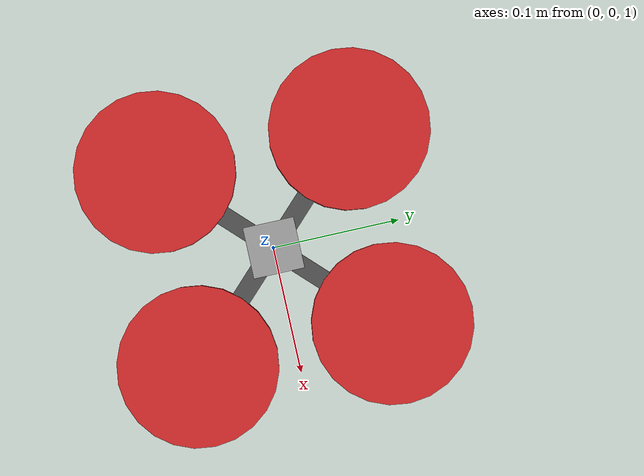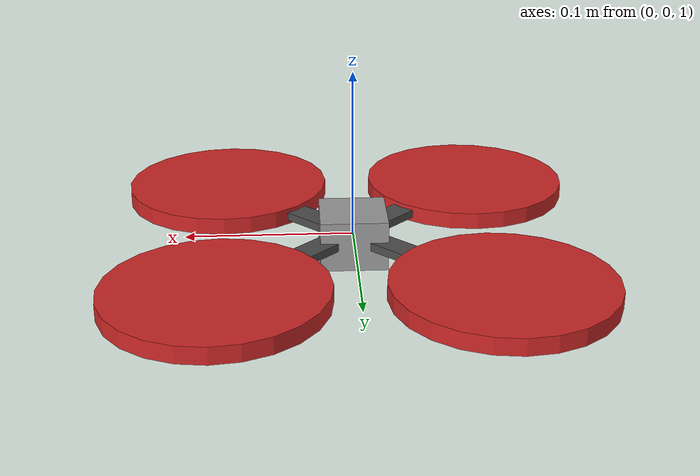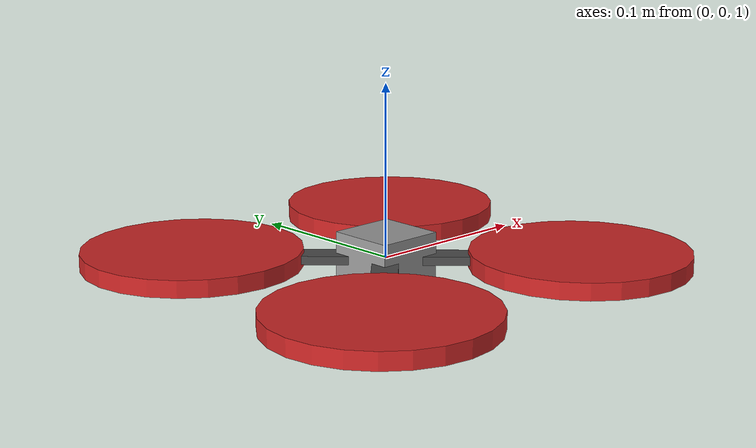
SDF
<?xml version='1.0' encoding='UTF-8'?>
<sdf version="1.7">
  <model name="x_quad_drone_generated">
    <static>false</static>
    <pose>0 0 1.0 0 0 0</pose>
    <link name="hull">
      <pose>0 0 0 0 0 0</pose>
      <inertial>
        <mass>0.272000</mass>
        <inertia>
          <ixx>5.66666667e-05</ixx>
          <iyy>5.66666667e-05</iyy>
          <izz>7.25333333e-05</izz>
          <ixy>0</ixy><ixz>0</ixz><iyz>0</iyz>
        </inertia>
      </inertial>
      <collision name="hull_geom_col">
        <geometry><box><size>0.040000 0.040000 0.030000</size></box></geometry>
      </collision>
      <visual name="hull_geom_vis">
        <geometry><box><size>0.040000 0.040000 0.030000</size></box></geometry>
        <material><script><uri>file://media/materials/scripts/gazebo.material</uri><name>Gazebo/Grey</name></script></material>
      </visual>
    </link>
    <link name="arm_0">
      <pose>0.038900 -0.038900 0.000000 0 0 -0.785398</pose>
      <inertial><mass>0.014438</mass><inertia><ixx>3.00781250e-07</ixx><iyy>1.45947244e-05</iyy><izz>1.48353494e-05</izz><ixy>0</ixy><ixz>0</ixz><iyz>0</iyz></inertia></inertial>
      <collision name="arm_0_geom_col"><geometry><box><size>0.110026 0.015000 0.005000</size></box></geometry></collision>
      <visual name="arm_0_geom_vis"><geometry><box><size>0.110026 0.015000 0.005000</size></box></geometry><material><script><uri>file://media/materials/scripts/gazebo.material</uri><name>Gazebo/DarkGrey</name></script></material></visual>
    </link>
    <joint name="joint_hull_to_arm_0" type="fixed">
      <parent>hull</parent><child>arm_0</child><pose>0 0 0 0 0 0</pose>
    </joint>
    <link name="rotor_0">
      <pose>0.077800 -0.077800 0.000000 0 0 0</pose>
      <inertial><mass>0.039000</mass><inertia><ixx>3.96394375e-05</ixx><iyy>3.96394375e-05</iyy><izz>7.86288750e-05</izz><ixy>0</ixy><ixz>0</ixz><iyz>0</iyz></inertia></inertial>
      <collision name="rotor_0_geom_col"><geometry><cylinder><radius>0.063500</radius><length>0.010000</length></cylinder></geometry></collision>
      <visual name="rotor_0_geom_vis"><geometry><cylinder><radius>0.063500</radius><length>0.010000</length></cylinder></geometry><material><script><uri>file://media/materials/scripts/gazebo.material</uri><name>Gazebo/Red</name></script></material></visual>
    </link>
    <joint name="joint_arm_0_to_rotor_0" type="revolute">
      <parent>arm_0</parent>
      <child>rotor_0</child>
      <pose>0.055013 0 0.000000 0 0 0</pose>
      <axis><xyz>0 0 1</xyz><limit><lower>-1e16</lower><upper>1e16</upper></limit><dynamics><damping>0.0001</damping></dynamics></axis>
    </joint>
    <link name="arm_1">
      <pose>-0.038900 0.038900 0.000000 0 0 2.356194</pose>
      <inertial><mass>0.014438</mass><inertia><ixx>3.00781250e-07</ixx><iyy>1.45947244e-05</iyy><izz>1.48353494e-05</izz><ixy>0</ixy><ixz>0</ixz><iyz>0</iyz></inertia></inertial>
      <collision name="arm_1_geom_col"><geometry><box><size>0.110026 0.015000 0.005000</size></box></geometry></collision>
      <visual name="arm_1_geom_vis"><geometry><box><size>0.110026 0.015000 0.005000</size></box></geometry><material><script><uri>file://media/materials/scripts/gazebo.material</uri><name>Gazebo/DarkGrey</name></script></material></visual>
    </link>
    <joint name="joint_hull_to_arm_1" type="fixed">
      <parent>hull</parent><child>arm_1</child><pose>0 0 0 0 0 0</pose>
    </joint>
    <link name="rotor_1">
      <pose>-0.077800 0.077800 0.000000 0 0 0</pose>
      <inertial><mass>0.039000</mass><inertia><ixx>3.96394375e-05</ixx><iyy>3.96394375e-05</iyy><izz>7.86288750e-05</izz><ixy>0</ixy><ixz>0</ixz><iyz>0</iyz></inertia></inertial>
      <collision name="rotor_1_geom_col"><geometry><cylinder><radius>0.063500</radius><length>0.010000</length></cylinder></geometry></collision>
      <visual name="rotor_1_geom_vis"><geometry><cylinder><radius>0.063500</radius><length>0.010000</length></cylinder></geometry><material><script><uri>file://media/materials/scripts/gazebo.material</uri><name>Gazebo/Red</name></script></material></visual>
    </link>
    <joint name="joint_arm_1_to_rotor_1" type="revolute">
      <parent>arm_1</parent>
      <child>rotor_1</child>
      <pose>0.055013 0 0.000000 0 0 0</pose>
      <axis><xyz>0 0 1</xyz><limit><lower>-1e16</lower><upper>1e16</upper></limit><dynamics><damping>0.0001</damping></dynamics></axis>
    </joint>
    <link name="arm_2">
      <pose>0.038900 0.038900 0.000000 0 0 0.785398</pose>
      <inertial><mass>0.014438</mass><inertia><ixx>3.00781250e-07</ixx><iyy>1.45947244e-05</iyy><izz>1.48353494e-05</izz><ixy>0</ixy><ixz>0</ixz><iyz>0</iyz></inertia></inertial>
      <collision name="arm_2_geom_col"><geometry><box><size>0.110026 0.015000 0.005000</size></box></geometry></collision>
      <visual name="arm_2_geom_vis"><geometry><box><size>0.110026 0.015000 0.005000</size></box></geometry><material><script><uri>file://media/materials/scripts/gazebo.material</uri><name>Gazebo/DarkGrey</name></script></material></visual>
    </link>
    <joint name="joint_hull_to_arm_2" type="fixed">
      <parent>hull</parent><child>arm_2</child><pose>0 0 0 0 0 0</pose>
    </joint>
    <link name="rotor_2">
      <pose>0.077800 0.077800 0.000000 0 0 0</pose>
      <inertial><mass>0.039000</mass><inertia><ixx>3.96394375e-05</ixx><iyy>3.96394375e-05</iyy><izz>7.86288750e-05</izz><ixy>0</ixy><ixz>0</ixz><iyz>0</iyz></inertia></inertial>
      <collision name="rotor_2_geom_col"><geometry><cylinder><radius>0.063500</radius><length>0.010000</length></cylinder></geometry></collision>
      <visual name="rotor_2_geom_vis"><geometry><cylinder><radius>0.063500</radius><length>0.010000</length></cylinder></geometry><material><script><uri>file://media/materials/scripts/gazebo.material</uri><name>Gazebo/Red</name></script></material></visual>
    </link>
    <joint name="joint_arm_2_to_rotor_2" type="revolute">
      <parent>arm_2</parent>
      <child>rotor_2</child>
      <pose>0.055013 0 0.000000 0 0 0</pose>
      <axis><xyz>0 0 1</xyz><limit><lower>-1e16</lower><upper>1e16</upper></limit><dynamics><damping>0.0001</damping></dynamics></axis>
    </joint>
    <link name="arm_3">
      <pose>-0.038900 -0.038900 0.000000 0 0 -2.356194</pose>
      <inertial><mass>0.014438</mass><inertia><ixx>3.00781250e-07</ixx><iyy>1.45947244e-05</iyy><izz>1.48353494e-05</izz><ixy>0</ixy><ixz>0</ixz><iyz>0</iyz></inertia></inertial>
      <collision name="arm_3_geom_col"><geometry><box><size>0.110026 0.015000 0.005000</size></box></geometry></collision>
      <visual name="arm_3_geom_vis"><geometry><box><size>0.110026 0.015000 0.005000</size></box></geometry><material><script><uri>file://media/materials/scripts/gazebo.material</uri><name>Gazebo/DarkGrey</name></script></material></visual>
    </link>
    <joint name="joint_hull_to_arm_3" type="fixed">
      <parent>hull</parent><child>arm_3</child><pose>0 0 0 0 0 0</pose>
    </joint>
    <link name="rotor_3">
      <pose>-0.077800 -0.077800 0.000000 0 0 0</pose>
      <inertial><mass>0.039000</mass><inertia><ixx>3.96394375e-05</ixx><iyy>3.96394375e-05</iyy><izz>7.86288750e-05</izz><ixy>0</ixy><ixz>0</ixz><iyz>0</iyz></inertia></inertial>
      <collision name="rotor_3_geom_col"><geometry><cylinder><radius>0.063500</radius><length>0.010000</length></cylinder></geometry></collision>
      <visual name="rotor_3_geom_vis"><geometry><cylinder><radius>0.063500</radius><length>0.010000</length></cylinder></geometry><material><script><uri>file://media/materials/scripts/gazebo.material</uri><name>Gazebo/Red</name></script></material></visual>
    </link>
    <joint name="joint_arm_3_to_rotor_3" type="revolute">
      <parent>arm_3</parent>
      <child>rotor_3</child>
      <pose>0.055013 0 0.000000 0 0 0</pose>
      <axis><xyz>0 0 1</xyz><limit><lower>-1e16</lower><upper>1e16</upper></limit><dynamics><damping>0.0001</damping></dynamics></axis>
    </joint>
    <plugin name="trick_executor_plugin" filename="libtrick_executor_plugin.so">
      <rotor_count>4</rotor_count>
      <rotor_link_base_name>rotor_</rotor_link_base_name>
      <zmq_port>5555</zmq_port>
      <run_test_mode>true</run_test_mode>
      <test_mode_radius>2.000000</test_mode_radius>
      <test_mode_angular_velocity>0.500000</test_mode_angular_velocity>
      <test_mode_altitude>1.500000</test_mode_altitude>
      <drag_coefficient>0.100000</drag_coefficient>
    </plugin>
  </model>
</sdf>
